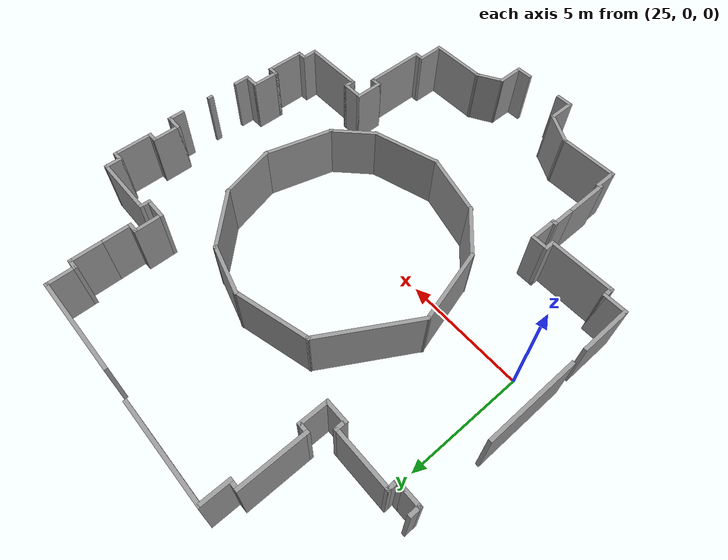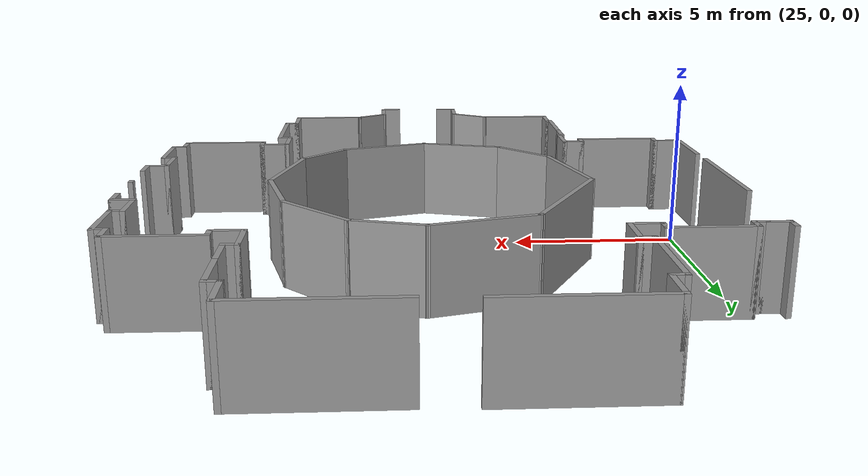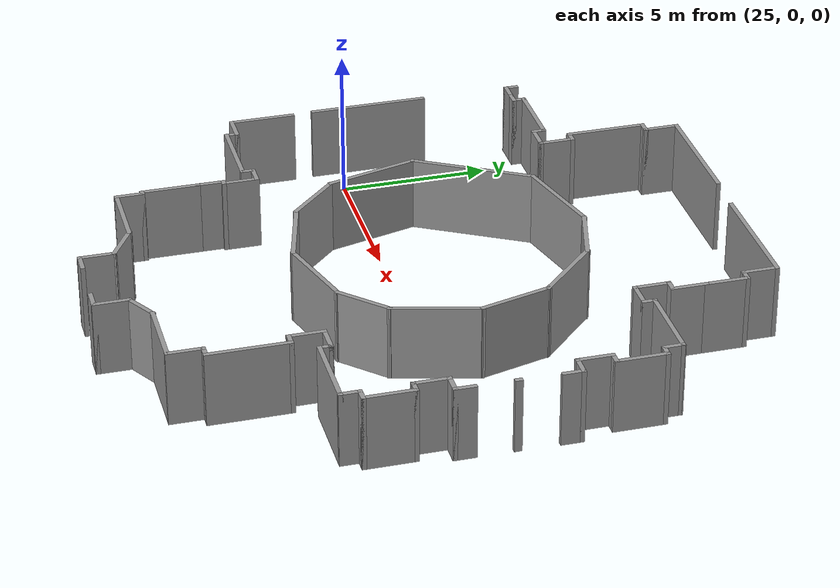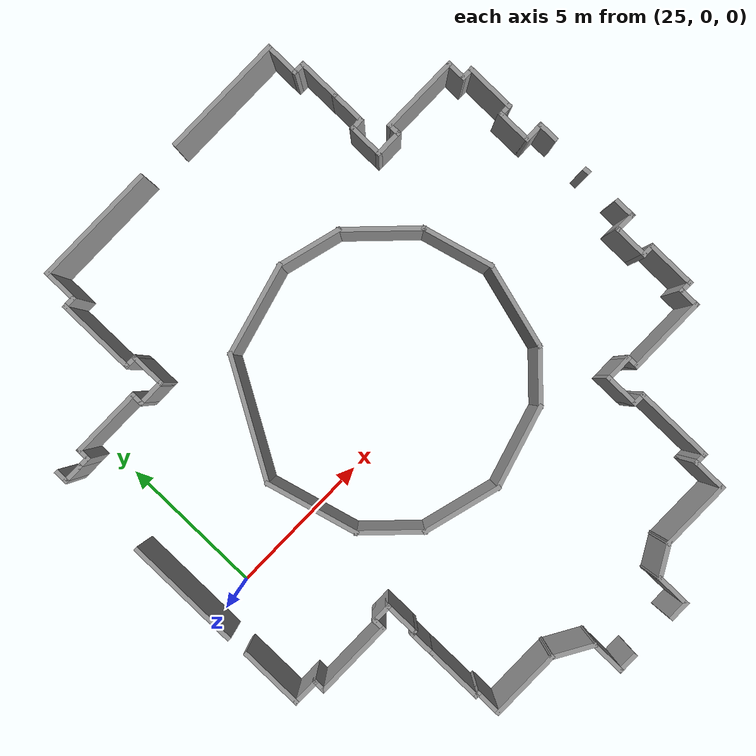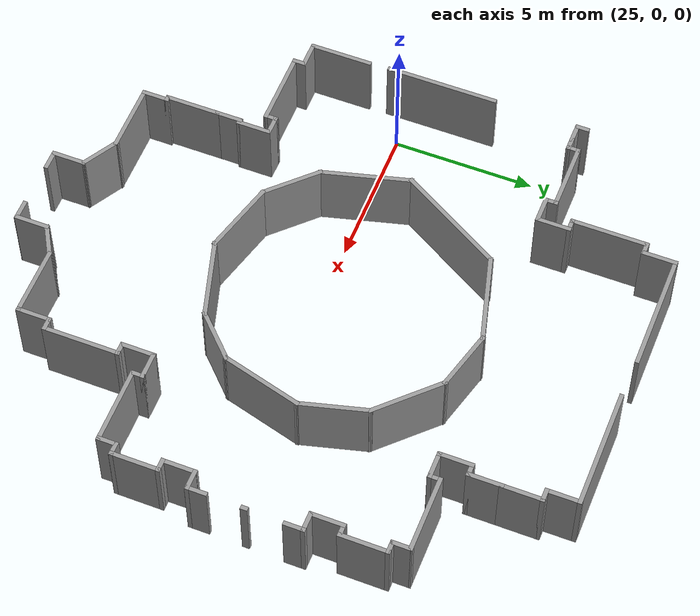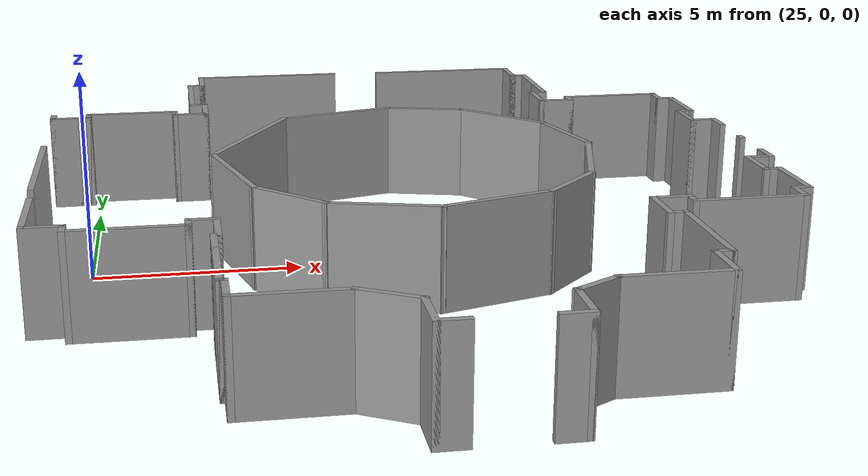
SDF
<sdf version="1.7">
 <model name="TD_n1">
  <pose>-7.14234 -2.45461 0 0 -0 0</pose>
  <link name="Wall_300">
   <collision name="Wall_300_Collision">
    <geometry><box><size>0.5 0.15 2.5</size></box></geometry>
    <pose>0 0 1.25 0 -0 0</pose>
   </collision>
   <visual name="Wall_300_Visual">
    <pose>0 0 1.25 0 -0 0</pose>
    <geometry><box><size>0.5 0.15 2.5</size></box></geometry>
    <material>
     <script><uri>file://media/materials/scripts/gazebo.material</uri><name>Gazebo/Grey</name></script>
     <ambient>1 1 1 1</ambient>
    </material>
    <meta><layer>0</layer></meta>
   </visual>
   <pose>30.9513 8.74308 0 0 -0 -1.5708</pose>
  </link>
  <link name="Wall_301">
   <collision name="Wall_301_Collision">
    <geometry><box><size>0.75 0.15 2.5</size></box></geometry>
    <pose>0 0 1.25 0 -0 0</pose>
   </collision>
   <visual name="Wall_301_Visual">
    <pose>0 0 1.25 0 -0 0</pose>
    <geometry><box><size>0.75 0.15 2.5</size></box></geometry>
    <material>
     <script><uri>file://media/materials/scripts/gazebo.material</uri><name>Gazebo/Grey</name></script>
     <ambient>1 1 1 1</ambient>
    </material>
    <meta><layer>0</layer></meta>
   </visual>
   <pose>31.2513 8.56808 0 0 -0 0</pose>
  </link>
  <link name="Wall_302">
   <collision name="Wall_302_Collision">
    <geometry><box><size>0.5 0.15 2.5</size></box></geometry>
    <pose>0 0 1.25 0 -0 0</pose>
   </collision>
   <visual name="Wall_302_Visual">
    <pose>0 0 1.25 0 -0 0</pose>
    <geometry><box><size>0.5 0.15 2.5</size></box></geometry>
    <material>
     <script><uri>file://media/materials/scripts/gazebo.material</uri><name>Gazebo/Grey</name></script>
     <ambient>1 1 1 1</ambient>
    </material>
    <meta><layer>0</layer></meta>
   </visual>
   <pose>31.7263 8.56808 0 0 -0 0</pose>
  </link>
  <link name="Wall_303">
   <collision name="Wall_303_Collision">
    <geometry><box><size>0.5 0.15 2.5</size></box></geometry>
    <pose>0 0 1.25 0 -0 0</pose>
   </collision>
   <visual name="Wall_303_Visual">
    <pose>0 0 1.25 0 -0 0</pose>
    <geometry><box><size>0.5 0.15 2.5</size></box></geometry>
    <material>
     <script><uri>file://media/materials/scripts/gazebo.material</uri><name>Gazebo/Grey</name></script>
     <ambient>1 1 1 1</ambient>
    </material>
    <meta><layer>0</layer></meta>
   </visual>
   <pose>31.9013 8.74308 0 0 -0 1.5708</pose>
  </link>
  <link name="Wall_304">
   <collision name="Wall_304_Collision">
    <geometry><box><size>2.5 0.15 2.5</size></box></geometry>
    <pose>0 0 1.25 0 -0 0</pose>
   </collision>
   <visual name="Wall_304_Visual">
    <pose>0 0 1.25 0 -0 0</pose>
    <geometry><box><size>2.5 0.15 2.5</size></box></geometry>
    <material>
     <script><uri>file://media/materials/scripts/gazebo.material</uri><name>Gazebo/Grey</name></script>
     <ambient>1 1 1 1</ambient>
    </material>
    <meta><layer>0</layer></meta>
   </visual>
   <pose>33.0763 8.91808 0 0 -0 0</pose>
  </link>
  <link name="Wall_305">
   <collision name="Wall_305_Collision">
    <geometry><box><size>0.5 0.15 2.5</size></box></geometry>
    <pose>0 0 1.25 0 -0 0</pose>
   </collision>
   <visual name="Wall_305_Visual">
    <pose>0 0 1.25 0 -0 0</pose>
    <geometry><box><size>0.5 0.15 2.5</size></box></geometry>
    <material>
     <script><uri>file://media/materials/scripts/gazebo.material</uri><name>Gazebo/Grey</name></script>
     <ambient>1 1 1 1</ambient>
    </material>
    <meta><layer>0</layer></meta>
   </visual>
   <pose>34.2513 8.74308 0 0 -0 -1.5708</pose>
  </link>
  <link name="Wall_306">
   <collision name="Wall_306_Collision">
    <geometry><box><size>1 0.15 2.5</size></box></geometry>
    <pose>0 0 1.25 0 -0 0</pose>
   </collision>
   <visual name="Wall_306_Visual">
    <pose>0 0 1.25 0 -0 0</pose>
    <geometry><box><size>1 0.15 2.5</size></box></geometry>
    <material>
     <script><uri>file://media/materials/scripts/gazebo.material</uri><name>Gazebo/Grey</name></script>
     <ambient>1 1 1 1</ambient>
    </material>
    <meta><layer>0</layer></meta>
   </visual>
   <pose>34.6763 8.56808 0 0 -0 0</pose>
  </link>
  <link name="Wall_307">
   <collision name="Wall_307_Collision">
    <geometry><box><size>1.25 0.15 2.5</size></box></geometry>
    <pose>0 0 1.25 0 -0 0</pose>
   </collision>
   <visual name="Wall_307_Visual">
    <pose>0 0 1.25 0 -0 0</pose>
    <geometry><box><size>1.25 0.15 2.5</size></box></geometry>
    <material>
     <script><uri>file://media/materials/scripts/gazebo.material</uri><name>Gazebo/Grey</name></script>
     <ambient>1 1 1 1</ambient>
    </material>
    <meta><layer>0</layer></meta>
   </visual>
   <pose>35.1013 9.11808 0 0 -0 1.5708</pose>
  </link>
  <link name="Wall_308">
   <collision name="Wall_308_Collision">
    <geometry><box><size>0.5 0.15 2.5</size></box></geometry>
    <pose>0 0 1.25 0 -0 0</pose>
   </collision>
   <visual name="Wall_308_Visual">
    <pose>0 0 1.25 0 -0 0</pose>
    <geometry><box><size>0.5 0.15 2.5</size></box></geometry>
    <material>
     <script><uri>file://media/materials/scripts/gazebo.material</uri><name>Gazebo/Grey</name></script>
     <ambient>1 1 1 1</ambient>
    </material>
    <meta><layer>0</layer></meta>
   </visual>
   <pose>34.9263 9.66808 0 0 -0 3.14159</pose>
  </link>
  <link name="Wall_309">
   <collision name="Wall_309_Collision">
    <geometry><box><size>2.75 0.15 2.5</size></box></geometry>
    <pose>0 0 1.25 0 -0 0</pose>
   </collision>
   <visual name="Wall_309_Visual">
    <pose>0 0 1.25 0 -0 0</pose>
    <geometry><box><size>2.75 0.15 2.5</size></box></geometry>
    <material>
     <script><uri>file://media/materials/scripts/gazebo.material</uri><name>Gazebo/Grey</name></script>
     <ambient>1 1 1 1</ambient>
    </material>
    <meta><layer>0</layer></meta>
   </visual>
   <pose>34.7513 10.9681 0 0 -0 1.5708</pose>
  </link>
  <link name="Wall_310">
   <collision name="Wall_310_Collision">
    <geometry><box><size>0.5 0.15 2.5</size></box></geometry>
    <pose>0 0 1.25 0 -0 0</pose>
   </collision>
   <visual name="Wall_310_Visual">
    <pose>0 0 1.25 0 -0 0</pose>
    <geometry><box><size>0.5 0.15 2.5</size></box></geometry>
    <material>
     <script><uri>file://media/materials/scripts/gazebo.material</uri><name>Gazebo/Grey</name></script>
     <ambient>1 1 1 1</ambient>
    </material>
    <meta><layer>0</layer></meta>
   </visual>
   <pose>34.9263 12.2681 0 0 -0 0</pose>
  </link>
  <link name="Wall_311">
   <collision name="Wall_311_Collision">
    <geometry><box><size>1.25 0.15 2.5</size></box></geometry>
    <pose>0 0 1.25 0 -0 0</pose>
   </collision>
   <visual name="Wall_311_Visual">
    <pose>0 0 1.25 0 -0 0</pose>
    <geometry><box><size>1.25 0.15 2.5</size></box></geometry>
    <material>
     <script><uri>file://media/materials/scripts/gazebo.material</uri><name>Gazebo/Grey</name></script>
     <ambient>1 1 1 1</ambient>
    </material>
    <meta><layer>0</layer></meta>
   </visual>
   <pose>35.1013 12.8181 0 0 -0 1.5708</pose>
  </link>
  <link name="Wall_312">
   <collision name="Wall_312_Collision">
    <geometry><box><size>4.25 0.15 2.5</size></box></geometry>
    <pose>0 0 1.25 0 -0 0</pose>
   </collision>
   <visual name="Wall_312_Visual">
    <pose>0 0 1.25 0 -0 0</pose>
    <geometry><box><size>4.25 0.15 2.5</size></box></geometry>
    <material>
     <script><uri>file://media/materials/scripts/gazebo.material</uri><name>Gazebo/Grey</name></script>
     <ambient>1 1 1 1</ambient>
    </material>
    <meta><layer>0</layer></meta>
   </visual>
   <pose>37.1513 13.3681 0 0 -0 0</pose>
  </link>
  <link name="Wall_314">
   <collision name="Wall_314_Collision">
    <geometry><box><size>4 0.15 2.5</size></box></geometry>
    <pose>0 0 1.25 0 -0 0</pose>
   </collision>
   <visual name="Wall_314_Visual">
    <pose>0 0 1.25 0 -0 0</pose>
    <geometry><box><size>4 0.15 2.5</size></box></geometry>
    <material>
     <script><uri>file://media/materials/scripts/gazebo.material</uri><name>Gazebo/Grey</name></script>
     <ambient>1 1 1 1</ambient>
    </material>
    <meta><layer>0</layer></meta>
   </visual>
   <pose>30.9378 3.62458 0 0 -0 -1.5708</pose>
  </link>
  <link name="Wall_316">
   <collision name="Wall_316_Collision">
    <geometry><box><size>2.25 0.15 2.5</size></box></geometry>
    <pose>0 0 1.25 0 -0 0</pose>
   </collision>
   <visual name="Wall_316_Visual">
    <pose>0 0 1.25 0 -0 0</pose>
    <geometry><box><size>2.25 0.15 2.5</size></box></geometry>
    <material>
     <script><uri>file://media/materials/scripts/gazebo.material</uri><name>Gazebo/Grey</name></script>
     <ambient>1 1 1 1</ambient>
    </material>
    <meta><layer>0</layer></meta>
   </visual>
   <pose>30.9767 -0.110689 0 0 -0 -1.5708</pose>
  </link>
  <link name="Wall_317">
   <collision name="Wall_317_Collision">
    <geometry><box><size>1 0.15 2.5</size></box></geometry>
    <pose>0 0 1.25 0 -0 0</pose>
   </collision>
   <visual name="Wall_317_Visual">
    <pose>0 0 1.25 0 -0 0</pose>
    <geometry><box><size>1 0.15 2.5</size></box></geometry>
    <material>
     <script><uri>file://media/materials/scripts/gazebo.material</uri><name>Gazebo/Grey</name></script>
     <ambient>1 1 1 1</ambient>
    </material>
    <meta><layer>0</layer></meta>
   </visual>
   <pose>31.4017 -1.16069 0 0 -0 0</pose>
  </link>
  <link name="Wall_318">
   <collision name="Wall_318_Collision">
    <geometry><box><size>0.5 0.15 2.5</size></box></geometry>
    <pose>0 0 1.25 0 -0 0</pose>
   </collision>
   <visual name="Wall_318_Visual">
    <pose>0 0 1.25 0 -0 0</pose>
    <geometry><box><size>0.5 0.15 2.5</size></box></geometry>
    <material>
     <script><uri>file://media/materials/scripts/gazebo.material</uri><name>Gazebo/Grey</name></script>
     <ambient>1 1 1 1</ambient>
    </material>
    <meta><layer>0</layer></meta>
   </visual>
   <pose>31.8267 -1.33569 0 0 -0 -1.5708</pose>
  </link>
  <link name="Wall_319">
   <collision name="Wall_319_Collision">
    <geometry><box><size>2.75 0.15 2.5</size></box></geometry>
    <pose>0 0 1.25 0 -0 0</pose>
   </collision>
   <visual name="Wall_319_Visual">
    <pose>0 0 1.25 0 -0 0</pose>
    <geometry><box><size>2.75 0.15 2.5</size></box></geometry>
    <material>
     <script><uri>file://media/materials/scripts/gazebo.material</uri><name>Gazebo/Grey</name></script>
     <ambient>1 1 1 1</ambient>
    </material>
    <meta><layer>0</layer></meta>
   </visual>
   <pose>33.1267 -1.51069 0 0 -0 0</pose>
  </link>
  <link name="Wall_320">
   <collision name="Wall_320_Collision">
    <geometry><box><size>0.5 0.15 2.5</size></box></geometry>
    <pose>0 0 1.25 0 -0 0</pose>
   </collision>
   <visual name="Wall_320_Visual">
    <pose>0 0 1.25 0 -0 0</pose>
    <geometry><box><size>0.5 0.15 2.5</size></box></geometry>
    <material>
     <script><uri>file://media/materials/scripts/gazebo.material</uri><name>Gazebo/Grey</name></script>
     <ambient>1 1 1 1</ambient>
    </material>
    <meta><layer>0</layer></meta>
   </visual>
   <pose>34.4267 -1.33569 0 0 -0 1.5708</pose>
  </link>
  <link name="Wall_321">
   <collision name="Wall_321_Collision">
    <geometry><box><size>0.75 0.15 2.5</size></box></geometry>
    <pose>0 0 1.25 0 -0 0</pose>
   </collision>
   <visual name="Wall_321_Visual">
    <pose>0 0 1.25 0 -0 0</pose>
    <geometry><box><size>0.75 0.15 2.5</size></box></geometry>
    <material>
     <script><uri>file://media/materials/scripts/gazebo.material</uri><name>Gazebo/Grey</name></script>
     <ambient>1 1 1 1</ambient>
    </material>
    <meta><layer>0</layer></meta>
   </visual>
   <pose>34.7267 -1.16069 0 0 -0 0</pose>
  </link>
  <link name="Wall_322">
   <collision name="Wall_322_Collision">
    <geometry><box><size>1.25 0.15 2.5</size></box></geometry>
    <pose>0 0 1.25 0 -0 0</pose>
   </collision>
   <visual name="Wall_322_Visual">
    <pose>0 0 1.25 0 -0 0</pose>
    <geometry><box><size>1.25 0.15 2.5</size></box></geometry>
    <material>
     <script><uri>file://media/materials/scripts/gazebo.material</uri><name>Gazebo/Grey</name></script>
     <ambient>1 1 1 1</ambient>
    </material>
    <meta><layer>0</layer></meta>
   </visual>
   <pose>35.0267 -1.71069 0 0 -0 -1.5708</pose>
  </link>
  <link name="Wall_323">
   <collision name="Wall_323_Collision">
    <geometry><box><size>0.25 0.15 2.5</size></box></geometry>
    <pose>0 0 1.25 0 -0 0</pose>
   </collision>
   <visual name="Wall_323_Visual">
    <pose>0 0 1.25 0 -0 0</pose>
    <geometry><box><size>0.25 0.15 2.5</size></box></geometry>
    <material>
     <script><uri>file://media/materials/scripts/gazebo.material</uri><name>Gazebo/Grey</name></script>
     <ambient>1 1 1 1</ambient>
    </material>
    <meta><layer>0</layer></meta>
   </visual>
   <pose>34.9767 -2.26069 0 0 -0 3.14159</pose>
  </link>
  <link name="Wall_324">
   <collision name="Wall_324_Collision">
    <geometry><box><size>1 0.15 2.5</size></box></geometry>
    <pose>0 0 1.25 0 -0 0</pose>
   </collision>
   <visual name="Wall_324_Visual">
    <pose>0 0 1.25 0 -0 0</pose>
    <geometry><box><size>1 0.15 2.5</size></box></geometry>
    <material>
     <script><uri>file://media/materials/scripts/gazebo.material</uri><name>Gazebo/Grey</name></script>
     <ambient>1 1 1 1</ambient>
    </material>
    <meta><layer>0</layer></meta>
   </visual>
   <pose>34.9267 -2.68569 0 0 -0 -1.5708</pose>
  </link>
  <link name="Wall_326">
   <collision name="Wall_326_Collision">
    <geometry><box><size>2.75 0.15 2.5</size></box></geometry>
    <pose>0 0 1.25 0 -0 0</pose>
   </collision>
   <visual name="Wall_326_Visual">
    <pose>0 0 1.25 0 -0 0</pose>
    <geometry><box><size>2.75 0.15 2.5</size></box></geometry>
    <material>
     <script><uri>file://media/materials/scripts/gazebo.material</uri><name>Gazebo/Grey</name></script>
     <ambient>1 1 1 1</ambient>
    </material>
    <meta><layer>0</layer></meta>
   </visual>
   <pose>38.6992 -0.712589 0 0 -0 2.87979</pose>
  </link>
  <link name="Wall_327">
   <collision name="Wall_327_Collision">
    <geometry><box><size>2.25 0.15 2.5</size></box></geometry>
    <pose>0 0 1.25 0 -0 0</pose>
   </collision>
   <visual name="Wall_327_Visual">
    <pose>0 0 1.25 0 -0 0</pose>
    <geometry><box><size>2.25 0.15 2.5</size></box></geometry>
    <material>
     <script><uri>file://media/materials/scripts/gazebo.material</uri><name>Gazebo/Grey</name></script>
     <ambient>1 1 1 1</ambient>
    </material>
    <meta><layer>0</layer></meta>
   </visual>
   <pose>36.7011 0.366338 0 0 -0 2.35619</pose>
  </link>
  <link name="Wall_328">
   <collision name="Wall_328_Collision">
    <geometry><box><size>3.25 0.15 2.5</size></box></geometry>
    <pose>0 0 1.25 0 -0 0</pose>
   </collision>
   <visual name="Wall_328_Visual">
    <pose>0 0 1.25 0 -0 0</pose>
    <geometry><box><size>3.25 0.15 2.5</size></box></geometry>
    <material>
     <script><uri>file://media/materials/scripts/gazebo.material</uri><name>Gazebo/Grey</name></script>
     <ambient>1 1 1 1</ambient>
    </material>
    <meta><layer>0</layer></meta>
   </visual>
   <pose>35.5574 2.60598 0 0 -0 1.8326</pose>
  </link>
  <link name="Wall_329">
   <collision name="Wall_329_Collision">
    <geometry><box><size>4.25 0.15 2.5</size></box></geometry>
    <pose>0 0 1.25 0 -0 0</pose>
   </collision>
   <visual name="Wall_329_Visual">
    <pose>0 0 1.25 0 -0 0</pose>
    <geometry><box><size>4.25 0.15 2.5</size></box></geometry>
    <material>
     <script><uri>file://media/materials/scripts/gazebo.material</uri><name>Gazebo/Grey</name></script>
     <ambient>1 1 1 1</ambient>
    </material>
    <meta><layer>0</layer></meta>
   </visual>
   <pose>36.1813 5.87852 0 0 -0 1.0472</pose>
  </link>
  <link name="Wall_330">
   <collision name="Wall_330_Collision">
    <geometry><box><size>3.25 0.15 2.5</size></box></geometry>
    <pose>0 0 1.25 0 -0 0</pose>
   </collision>
   <visual name="Wall_330_Visual">
    <pose>0 0 1.25 0 -0 0</pose>
    <geometry><box><size>3.25 0.15 2.5</size></box></geometry>
    <material>
     <script><uri>file://media/materials/scripts/gazebo.material</uri><name>Gazebo/Grey</name></script>
     <ambient>1 1 1 1</ambient>
    </material>
    <meta><layer>0</layer></meta>
   </visual>
   <pose>38.7035 8.05504 0 0 -0 0.261799</pose>
  </link>
  <link name="Wall_331">
   <collision name="Wall_331_Collision">
    <geometry><box><size>2.25 0.15 2.5</size></box></geometry>
    <pose>0 0 1.25 0 -0 0</pose>
   </collision>
   <visual name="Wall_331_Visual">
    <pose>0 0 1.25 0 -0 0</pose>
    <geometry><box><size>2.25 0.15 2.5</size></box></geometry>
    <material>
     <script><uri>file://media/materials/scripts/gazebo.material</uri><name>Gazebo/Grey</name></script>
     <ambient>1 1 1 1</ambient>
    </material>
    <meta><layer>0</layer></meta>
   </visual>
   <pose>41.2149 8.18445 0 0 -0 -0.261799</pose>
  </link>
  <link name="Wall_332">
   <collision name="Wall_332_Collision">
    <geometry><box><size>2.75 0.15 2.5</size></box></geometry>
    <pose>0 0 1.25 0 -0 0</pose>
   </collision>
   <visual name="Wall_332_Visual">
    <pose>0 0 1.25 0 -0 0</pose>
    <geometry><box><size>2.75 0.15 2.5</size></box></geometry>
    <material>
     <script><uri>file://media/materials/scripts/gazebo.material</uri><name>Gazebo/Grey</name></script>
     <ambient>1 1 1 1</ambient>
    </material>
    <meta><layer>0</layer></meta>
   </visual>
   <pose>43.1483 6.99345 0 0 -0 -0.785398</pose>
  </link>
  <link name="Wall_333">
   <collision name="Wall_333_Collision">
    <geometry><box><size>2.5 0.15 2.5</size></box></geometry>
    <pose>0 0 1.25 0 -0 0</pose>
   </collision>
   <visual name="Wall_333_Visual">
    <pose>0 0 1.25 0 -0 0</pose>
    <geometry><box><size>2.5 0.15 2.5</size></box></geometry>
    <material>
     <script><uri>file://media/materials/scripts/gazebo.material</uri><name>Gazebo/Grey</name></script>
     <ambient>1 1 1 1</ambient>
    </material>
    <meta><layer>0</layer></meta>
   </visual>
   <pose>44.3717 4.93925 0 0 -0 -1.309</pose>
  </link>
  <link name="Wall_334">
   <collision name="Wall_334_Collision">
    <geometry><box><size>3 0.15 2.5</size></box></geometry>
    <pose>0 0 1.25 0 -0 0</pose>
   </collision>
   <visual name="Wall_334_Visual">
    <pose>0 0 1.25 0 -0 0</pose>
    <geometry><box><size>3 0.15 2.5</size></box></geometry>
    <material>
     <script><uri>file://media/materials/scripts/gazebo.material</uri><name>Gazebo/Grey</name></script>
     <ambient>1 1 1 1</ambient>
    </material>
    <meta><layer>0</layer></meta>
   </visual>
   <pose>44.307 2.42785 0 0 -0 -1.8326</pose>
  </link>
  <link name="Wall_335">
   <collision name="Wall_335_Collision">
    <geometry><box><size>2 0.15 2.5</size></box></geometry>
    <pose>0 0 1.25 0 -0 0</pose>
   </collision>
   <visual name="Wall_335_Visual">
    <pose>0 0 1.25 0 -0 0</pose>
    <geometry><box><size>2 0.15 2.5</size></box></geometry>
    <material>
     <script><uri>file://media/materials/scripts/gazebo.material</uri><name>Gazebo/Grey</name></script>
     <ambient>1 1 1 1</ambient>
    </material>
    <meta><layer>0</layer></meta>
   </visual>
   <pose>43.2841 0.397327 0 0 -0 -2.35619</pose>
  </link>
  <link name="Wall_336">
   <collision name="Wall_336_Collision">
    <geometry><box><size>2.93993 0.15 2.5</size></box></geometry>
    <pose>0 0 1.25 0 -0 0</pose>
   </collision>
   <visual name="Wall_336_Visual">
    <pose>0 0 1.25 0 -0 0</pose>
    <geometry><box><size>2.93993 0.15 2.5</size></box></geometry>
    <material>
     <script><uri>file://media/materials/scripts/gazebo.material</uri><name>Gazebo/Grey</name></script>
     <ambient>1 1 1 1</ambient>
    </material>
    <meta><layer>0</layer></meta>
   </visual>
   <pose>41.2925 -0.6529 0 0 -0 -2.85364</pose>
  </link>
  <link name="Wall_338">
   <collision name="Wall_338_Collision">
    <geometry><box><size>2 0.15 2.5</size></box></geometry>
    <pose>0 0 1.25 0 -0 0</pose>
   </collision>
   <visual name="Wall_338_Visual">
    <pose>0 0 1.25 0 -0 0</pose>
    <geometry><box><size>2 0.15 2.5</size></box></geometry>
    <material>
     <script><uri>file://media/materials/scripts/gazebo.material</uri><name>Gazebo/Grey</name></script>
     <ambient>1 1 1 1</ambient>
    </material>
    <meta><layer>0</layer></meta>
   </visual>
   <pose>34.9267 -4.03569 0 0 -0 -1.5708</pose>
  </link>
  <link name="Wall_339">
   <collision name="Wall_339_Collision">
    <geometry><box><size>0.25 0.15 2.5</size></box></geometry>
    <pose>0 0 1.25 0 -0 0</pose>
   </collision>
   <visual name="Wall_339_Visual">
    <pose>0 0 1.25 0 -0 0</pose>
    <geometry><box><size>0.25 0.15 2.5</size></box></geometry>
    <material>
     <script><uri>file://media/materials/scripts/gazebo.material</uri><name>Gazebo/Grey</name></script>
     <ambient>1 1 1 1</ambient>
    </material>
    <meta><layer>0</layer></meta>
   </visual>
   <pose>34.9767 -4.96069 0 0 -0 0</pose>
  </link>
  <link name="Wall_340">
   <collision name="Wall_340_Collision">
    <geometry><box><size>1 0.15 2.5</size></box></geometry>
    <pose>0 0 1.25 0 -0 0</pose>
   </collision>
   <visual name="Wall_340_Visual">
    <pose>0 0 1.25 0 -0 0</pose>
    <geometry><box><size>1 0.15 2.5</size></box></geometry>
    <material>
     <script><uri>file://media/materials/scripts/gazebo.material</uri><name>Gazebo/Grey</name></script>
     <ambient>1 1 1 1</ambient>
    </material>
    <meta><layer>0</layer></meta>
   </visual>
   <pose>35.0267 -5.38569 0 0 -0 -1.5708</pose>
  </link>
  <link name="Wall_341">
   <collision name="Wall_341_Collision">
    <geometry><box><size>2.5 0.15 2.5</size></box></geometry>
    <pose>0 0 1.25 0 -0 0</pose>
   </collision>
   <visual name="Wall_341_Visual">
    <pose>0 0 1.25 0 -0 0</pose>
    <geometry><box><size>2.5 0.15 2.5</size></box></geometry>
    <material>
     <script><uri>file://media/materials/scripts/gazebo.material</uri><name>Gazebo/Grey</name></script>
     <ambient>1 1 1 1</ambient>
    </material>
    <meta><layer>0</layer></meta>
   </visual>
   <pose>36.2017 -5.81069 0 0 -0 0</pose>
  </link>
  <link name="Wall_342">
   <collision name="Wall_342_Collision">
    <geometry><box><size>1.5 0.15 2.5</size></box></geometry>
    <pose>0 0 1.25 0 -0 0</pose>
   </collision>
   <visual name="Wall_342_Visual">
    <pose>0 0 1.25 0 -0 0</pose>
    <geometry><box><size>1.5 0.15 2.5</size></box></geometry>
    <material>
     <script><uri>file://media/materials/scripts/gazebo.material</uri><name>Gazebo/Grey</name></script>
     <ambient>1 1 1 1</ambient>
    </material>
    <meta><layer>0</layer></meta>
   </visual>
   <pose>37.9613 -6.14819 0 0 -0 -0.523599</pose>
  </link>
  <link name="Wall_343">
   <collision name="Wall_343_Collision">
    <geometry><box><size>1.25 0.15 2.5</size></box></geometry>
    <pose>0 0 1.25 0 -0 0</pose>
   </collision>
   <visual name="Wall_343_Visual">
    <pose>0 0 1.25 0 -0 0</pose>
    <geometry><box><size>1.25 0.15 2.5</size></box></geometry>
    <material>
     <script><uri>file://media/materials/scripts/gazebo.material</uri><name>Gazebo/Grey</name></script>
     <ambient>1 1 1 1</ambient>
    </material>
    <meta><layer>0</layer></meta>
   </visual>
   <pose>38.5458 -7.03569 0 0 -0 -1.5708</pose>
  </link>
  <link name="Wall_344">
   <collision name="Wall_344_Collision">
    <geometry><box><size>0.75 0.15 2.5</size></box></geometry>
    <pose>0 0 1.25 0 -0 0</pose>
   </collision>
   <visual name="Wall_344_Visual">
    <pose>0 0 1.25 0 -0 0</pose>
    <geometry><box><size>0.75 0.15 2.5</size></box></geometry>
    <material>
     <script><uri>file://media/materials/scripts/gazebo.material</uri><name>Gazebo/Grey</name></script>
     <ambient>1 1 1 1</ambient>
    </material>
    <meta><layer>0</layer></meta>
   </visual>
   <pose>38.8458 -7.58569 0 0 -0 0</pose>
  </link>
  <link name="Wall_346">
   <collision name="Wall_346_Collision">
    <geometry><box><size>0.75 0.15 2.5</size></box></geometry>
    <pose>0 0 1.25 0 -0 0</pose>
   </collision>
   <visual name="Wall_346_Visual">
    <pose>0 0 1.25 0 -0 0</pose>
    <geometry><box><size>0.75 0.15 2.5</size></box></geometry>
    <material>
     <script><uri>file://media/materials/scripts/gazebo.material</uri><name>Gazebo/Grey</name></script>
     <ambient>1 1 1 1</ambient>
    </material>
    <meta><layer>0</layer></meta>
   </visual>
   <pose>41.0962 -7.61066 0 0 -0 0</pose>
  </link>
  <link name="Wall_347">
   <collision name="Wall_347_Collision">
    <geometry><box><size>1.25 0.15 2.5</size></box></geometry>
    <pose>0 0 1.25 0 -0 0</pose>
   </collision>
   <visual name="Wall_347_Visual">
    <pose>0 0 1.25 0 -0 0</pose>
    <geometry><box><size>1.25 0.15 2.5</size></box></geometry>
    <material>
     <script><uri>file://media/materials/scripts/gazebo.material</uri><name>Gazebo/Grey</name></script>
     <ambient>1 1 1 1</ambient>
    </material>
    <meta><layer>0</layer></meta>
   </visual>
   <pose>41.3962 -7.06066 0 0 -0 1.5708</pose>
  </link>
  <link name="Wall_348">
   <collision name="Wall_348_Collision">
    <geometry><box><size>1.25 0.15 2.5</size></box></geometry>
    <pose>0 0 1.25 0 -0 0</pose>
   </collision>
   <visual name="Wall_348_Visual">
    <pose>0 0 1.25 0 -0 0</pose>
    <geometry><box><size>1.25 0.15 2.5</size></box></geometry>
    <material>
     <script><uri>file://media/materials/scripts/gazebo.material</uri><name>Gazebo/Grey</name></script>
     <ambient>1 1 1 1</ambient>
    </material>
    <meta><layer>0</layer></meta>
   </visual>
   <pose>41.8725 -6.23566 0 0 -0 0.523599</pose>
  </link>
  <link name="Wall_349">
   <collision name="Wall_349_Collision">
    <geometry><box><size>2.5 0.15 2.5</size></box></geometry>
    <pose>0 0 1.25 0 -0 0</pose>
   </collision>
   <visual name="Wall_349_Visual">
    <pose>0 0 1.25 0 -0 0</pose>
    <geometry><box><size>2.5 0.15 2.5</size></box></geometry>
    <material>
     <script><uri>file://media/materials/scripts/gazebo.material</uri><name>Gazebo/Grey</name></script>
     <ambient>1 1 1 1</ambient>
    </material>
    <meta><layer>0</layer></meta>
   </visual>
   <pose>43.5238 -5.96066 0 0 -0 0</pose>
  </link>
  <link name="Wall_350">
   <collision name="Wall_350_Collision">
    <geometry><box><size>1.25 0.15 2.5</size></box></geometry>
    <pose>0 0 1.25 0 -0 0</pose>
   </collision>
   <visual name="Wall_350_Visual">
    <pose>0 0 1.25 0 -0 0</pose>
    <geometry><box><size>1.25 0.15 2.5</size></box></geometry>
    <material>
     <script><uri>file://media/materials/scripts/gazebo.material</uri><name>Gazebo/Grey</name></script>
     <ambient>1 1 1 1</ambient>
    </material>
    <meta><layer>0</layer></meta>
   </visual>
   <pose>44.6988 -5.41066 0 0 -0 1.5708</pose>
  </link>
  <link name="Wall_351">
   <collision name="Wall_351_Collision">
    <geometry><box><size>0.5 0.15 2.5</size></box></geometry>
    <pose>0 0 1.25 0 -0 0</pose>
   </collision>
   <visual name="Wall_351_Visual">
    <pose>0 0 1.25 0 -0 0</pose>
    <geometry><box><size>0.5 0.15 2.5</size></box></geometry>
    <material>
     <script><uri>file://media/materials/scripts/gazebo.material</uri><name>Gazebo/Grey</name></script>
     <ambient>1 1 1 1</ambient>
    </material>
    <meta><layer>0</layer></meta>
   </visual>
   <pose>44.8738 -4.86066 0 0 -0 0</pose>
  </link>
  <link name="Wall_352">
   <collision name="Wall_352_Collision">
    <geometry><box><size>2.75 0.15 2.5</size></box></geometry>
    <pose>0 0 1.25 0 -0 0</pose>
   </collision>
   <visual name="Wall_352_Visual">
    <pose>0 0 1.25 0 -0 0</pose>
    <geometry><box><size>2.75 0.15 2.5</size></box></geometry>
    <material>
     <script><uri>file://media/materials/scripts/gazebo.material</uri><name>Gazebo/Grey</name></script>
     <ambient>1 1 1 1</ambient>
    </material>
    <meta><layer>0</layer></meta>
   </visual>
   <pose>45.0488 -3.56066 0 0 -0 1.5708</pose>
  </link>
  <link name="Wall_353">
   <collision name="Wall_353_Collision">
    <geometry><box><size>0.5 0.15 2.5</size></box></geometry>
    <pose>0 0 1.25 0 -0 0</pose>
   </collision>
   <visual name="Wall_353_Visual">
    <pose>0 0 1.25 0 -0 0</pose>
    <geometry><box><size>0.5 0.15 2.5</size></box></geometry>
    <material>
     <script><uri>file://media/materials/scripts/gazebo.material</uri><name>Gazebo/Grey</name></script>
     <ambient>1 1 1 1</ambient>
    </material>
    <meta><layer>0</layer></meta>
   </visual>
   <pose>44.8738 -2.26066 0 0 -0 3.14159</pose>
  </link>
  <link name="Wall_354">
   <collision name="Wall_354_Collision">
    <geometry><box><size>1.25 0.15 2.5</size></box></geometry>
    <pose>0 0 1.25 0 -0 0</pose>
   </collision>
   <visual name="Wall_354_Visual">
    <pose>0 0 1.25 0 -0 0</pose>
    <geometry><box><size>1.25 0.15 2.5</size></box></geometry>
    <material>
     <script><uri>file://media/materials/scripts/gazebo.material</uri><name>Gazebo/Grey</name></script>
     <ambient>1 1 1 1</ambient>
    </material>
    <meta><layer>0</layer></meta>
   </visual>
   <pose>44.6988 -1.71066 0 0 -0 1.5708</pose>
  </link>
  <link name="Wall_355">
   <collision name="Wall_355_Collision">
    <geometry><box><size>1 0.15 2.5</size></box></geometry>
    <pose>0 0 1.25 0 -0 0</pose>
   </collision>
   <visual name="Wall_355_Visual">
    <pose>0 0 1.25 0 -0 0</pose>
    <geometry><box><size>1 0.15 2.5</size></box></geometry>
    <material>
     <script><uri>file://media/materials/scripts/gazebo.material</uri><name>Gazebo/Grey</name></script>
     <ambient>1 1 1 1</ambient>
    </material>
    <meta><layer>0</layer></meta>
   </visual>
   <pose>45.1238 -1.16066 0 0 -0 0</pose>
  </link>
  <link name="Wall_356">
   <collision name="Wall_356_Collision">
    <geometry><box><size>0.5 0.15 2.5</size></box></geometry>
    <pose>0 0 1.25 0 -0 0</pose>
   </collision>
   <visual name="Wall_356_Visual">
    <pose>0 0 1.25 0 -0 0</pose>
    <geometry><box><size>0.5 0.15 2.5</size></box></geometry>
    <material>
     <script><uri>file://media/materials/scripts/gazebo.material</uri><name>Gazebo/Grey</name></script>
     <ambient>1 1 1 1</ambient>
    </material>
    <meta><layer>0</layer></meta>
   </visual>
   <pose>45.5488 -1.33566 0 0 -0 -1.5708</pose>
  </link>
  <link name="Wall_357">
   <collision name="Wall_357_Collision">
    <geometry><box><size>2.75 0.15 2.5</size></box></geometry>
    <pose>0 0 1.25 0 -0 0</pose>
   </collision>
   <visual name="Wall_357_Visual">
    <pose>0 0 1.25 0 -0 0</pose>
    <geometry><box><size>2.75 0.15 2.5</size></box></geometry>
    <material>
     <script><uri>file://media/materials/scripts/gazebo.material</uri><name>Gazebo/Grey</name></script>
     <ambient>1 1 1 1</ambient>
    </material>
    <meta><layer>0</layer></meta>
   </visual>
   <pose>46.8488 -1.51066 0 0 -0 0</pose>
  </link>
  <link name="Wall_358">
   <collision name="Wall_358_Collision">
    <geometry><box><size>0.75 0.15 2.5</size></box></geometry>
    <pose>0 0 1.25 0 -0 0</pose>
   </collision>
   <visual name="Wall_358_Visual">
    <pose>0 0 1.25 0 -0 0</pose>
    <geometry><box><size>0.75 0.15 2.5</size></box></geometry>
    <material>
     <script><uri>file://media/materials/scripts/gazebo.material</uri><name>Gazebo/Grey</name></script>
     <ambient>1 1 1 1</ambient>
    </material>
    <meta><layer>0</layer></meta>
   </visual>
   <pose>48.1488 -1.21066 0 0 -0 1.5708</pose>
  </link>
  <link name="Wall_359">
   <collision name="Wall_359_Collision">
    <geometry><box><size>0.5 0.15 2.5</size></box></geometry>
    <pose>0 0 1.25 0 -0 0</pose>
   </collision>
   <visual name="Wall_359_Visual">
    <pose>0 0 1.25 0 -0 0</pose>
    <geometry><box><size>0.5 0.15 2.5</size></box></geometry>
    <material>
     <script><uri>file://media/materials/scripts/gazebo.material</uri><name>Gazebo/Grey</name></script>
     <ambient>1 1 1 1</ambient>
    </material>
    <meta><layer>0</layer></meta>
   </visual>
   <pose>48.3238 -0.910658 0 0 -0 0</pose>
  </link>
  <link name="Wall_360">
   <collision name="Wall_360_Collision">
    <geometry><box><size>1.75 0.15 2.5</size></box></geometry>
    <pose>0 0 1.25 0 -0 0</pose>
   </collision>
   <visual name="Wall_360_Visual">
    <pose>0 0 1.25 0 -0 0</pose>
    <geometry><box><size>1.75 0.15 2.5</size></box></geometry>
    <material>
     <script><uri>file://media/materials/scripts/gazebo.material</uri><name>Gazebo/Grey</name></script>
     <ambient>1 1 1 1</ambient>
    </material>
    <meta><layer>0</layer></meta>
   </visual>
   <pose>48.4988 -0.110658 0 0 -0 1.5708</pose>
  </link>
  <link name="Wall_361">
   <collision name="Wall_361_Collision">
    <geometry><box><size>0.5 0.15 2.5</size></box></geometry>
    <pose>0 0 1.25 0 -0 0</pose>
   </collision>
   <visual name="Wall_361_Visual">
    <pose>0 0 1.25 0 -0 0</pose>
    <geometry><box><size>0.5 0.15 2.5</size></box></geometry>
    <material>
     <script><uri>file://media/materials/scripts/gazebo.material</uri><name>Gazebo/Grey</name></script>
     <ambient>1 1 1 1</ambient>
    </material>
    <meta><layer>0</layer></meta>
   </visual>
   <pose>48.3238 0.689342 0 0 -0 3.14159</pose>
  </link>
  <link name="Wall_362">
   <collision name="Wall_362_Collision">
    <geometry><box><size>1.25 0.15 2.5</size></box></geometry>
    <pose>0 0 1.25 0 -0 0</pose>
   </collision>
   <visual name="Wall_362_Visual">
    <pose>0 0 1.25 0 -0 0</pose>
    <geometry><box><size>1.25 0.15 2.5</size></box></geometry>
    <material>
     <script><uri>file://media/materials/scripts/gazebo.material</uri><name>Gazebo/Grey</name></script>
     <ambient>1 1 1 1</ambient>
    </material>
    <meta><layer>0</layer></meta>
   </visual>
   <pose>48.1488 1.23934 0 0 -0 1.5708</pose>
  </link>
  <link name="Wall_363">
   <collision name="Wall_363_Collision">
    <geometry><box><size>0.75 0.15 2.5</size></box></geometry>
    <pose>0 0 1.25 0 -0 0</pose>
   </collision>
   <visual name="Wall_363_Visual">
    <pose>0 0 1.25 0 -0 0</pose>
    <geometry><box><size>0.75 0.15 2.5</size></box></geometry>
    <material>
     <script><uri>file://media/materials/scripts/gazebo.material</uri><name>Gazebo/Grey</name></script>
     <ambient>1 1 1 1</ambient>
    </material>
    <meta><layer>0</layer></meta>
   </visual>
   <pose>48.4488 1.78934 0 0 -0 0</pose>
  </link>
  <link name="Wall_364">
   <collision name="Wall_364_Collision">
    <geometry><box><size>0.75 0.15 2.5</size></box></geometry>
    <pose>0 0 1.25 0 -0 0</pose>
   </collision>
   <visual name="Wall_364_Visual">
    <pose>0 0 1.25 0 -0 0</pose>
    <geometry><box><size>0.75 0.15 2.5</size></box></geometry>
    <material>
     <script><uri>file://media/materials/scripts/gazebo.material</uri><name>Gazebo/Grey</name></script>
     <ambient>1 1 1 1</ambient>
    </material>
    <meta><layer>0</layer></meta>
   </visual>
   <pose>48.7488 2.08934 0 0 -0 1.5708</pose>
  </link>
  <link name="Wall_368">
   <collision name="Wall_368_Collision">
    <geometry><box><size>0.25 0.15 2.5</size></box></geometry>
    <pose>0 0 1.25 0 -0 0</pose>
   </collision>
   <visual name="Wall_368_Visual">
    <pose>0 0 1.25 0 -0 0</pose>
    <geometry><box><size>0.25 0.15 2.5</size></box></geometry>
    <material>
     <script><uri>file://media/materials/scripts/gazebo.material</uri><name>Gazebo/Grey</name></script>
     <ambient>1 1 1 1</ambient>
    </material>
    <meta><layer>0</layer></meta>
   </visual>
   <pose>48.7649 3.71891 0 0 -0 -1.5708</pose>
  </link>
  <link name="Wall_370">
   <collision name="Wall_370_Collision">
    <geometry><box><size>0.75 0.15 2.5</size></box></geometry>
    <pose>0 0 1.25 0 -0 0</pose>
   </collision>
   <visual name="Wall_370_Visual">
    <pose>0 0 1.25 0 -0 0</pose>
    <geometry><box><size>0.75 0.15 2.5</size></box></geometry>
    <material>
     <script><uri>file://media/materials/scripts/gazebo.material</uri><name>Gazebo/Grey</name></script>
     <ambient>1 1 1 1</ambient>
    </material>
    <meta><layer>0</layer></meta>
   </visual>
   <pose>48.7955 5.39958 0 0 -0 1.5708</pose>
  </link>
  <link name="Wall_371">
   <collision name="Wall_371_Collision">
    <geometry><box><size>0.75 0.15 2.5</size></box></geometry>
    <pose>0 0 1.25 0 -0 0</pose>
   </collision>
   <visual name="Wall_371_Visual">
    <pose>0 0 1.25 0 -0 0</pose>
    <geometry><box><size>0.75 0.15 2.5</size></box></geometry>
    <material>
     <script><uri>file://media/materials/scripts/gazebo.material</uri><name>Gazebo/Grey</name></script>
     <ambient>1 1 1 1</ambient>
    </material>
    <meta><layer>0</layer></meta>
   </visual>
   <pose>48.4955 5.69958 0 0 -0 3.14159</pose>
  </link>
  <link name="Wall_372">
   <collision name="Wall_372_Collision">
    <geometry><box><size>1.25 0.15 2.5</size></box></geometry>
    <pose>0 0 1.25 0 -0 0</pose>
   </collision>
   <visual name="Wall_372_Visual">
    <pose>0 0 1.25 0 -0 0</pose>
    <geometry><box><size>1.25 0.15 2.5</size></box></geometry>
    <material>
     <script><uri>file://media/materials/scripts/gazebo.material</uri><name>Gazebo/Grey</name></script>
     <ambient>1 1 1 1</ambient>
    </material>
    <meta><layer>0</layer></meta>
   </visual>
   <pose>48.1955 6.24958 0 0 -0 1.5708</pose>
  </link>
  <link name="Wall_373">
   <collision name="Wall_373_Collision">
    <geometry><box><size>0.5 0.15 2.5</size></box></geometry>
    <pose>0 0 1.25 0 -0 0</pose>
   </collision>
   <visual name="Wall_373_Visual">
    <pose>0 0 1.25 0 -0 0</pose>
    <geometry><box><size>0.5 0.15 2.5</size></box></geometry>
    <material>
     <script><uri>file://media/materials/scripts/gazebo.material</uri><name>Gazebo/Grey</name></script>
     <ambient>1 1 1 1</ambient>
    </material>
    <meta><layer>0</layer></meta>
   </visual>
   <pose>48.3705 6.79958 0 0 -0 0</pose>
  </link>
  <link name="Wall_374">
   <collision name="Wall_374_Collision">
    <geometry><box><size>1.75 0.15 2.5</size></box></geometry>
    <pose>0 0 1.25 0 -0 0</pose>
   </collision>
   <visual name="Wall_374_Visual">
    <pose>0 0 1.25 0 -0 0</pose>
    <geometry><box><size>1.75 0.15 2.5</size></box></geometry>
    <material>
     <script><uri>file://media/materials/scripts/gazebo.material</uri><name>Gazebo/Grey</name></script>
     <ambient>1 1 1 1</ambient>
    </material>
    <meta><layer>0</layer></meta>
   </visual>
   <pose>48.5455 7.59958 0 0 -0 1.5708</pose>
  </link>
  <link name="Wall_375">
   <collision name="Wall_375_Collision">
    <geometry><box><size>0.5 0.15 2.5</size></box></geometry>
    <pose>0 0 1.25 0 -0 0</pose>
   </collision>
   <visual name="Wall_375_Visual">
    <pose>0 0 1.25 0 -0 0</pose>
    <geometry><box><size>0.5 0.15 2.5</size></box></geometry>
    <material>
     <script><uri>file://media/materials/scripts/gazebo.material</uri><name>Gazebo/Grey</name></script>
     <ambient>1 1 1 1</ambient>
    </material>
    <meta><layer>0</layer></meta>
   </visual>
   <pose>48.3705 8.39958 0 0 -0 3.14159</pose>
  </link>
  <link name="Wall_376">
   <collision name="Wall_376_Collision">
    <geometry><box><size>0.75 0.15 2.5</size></box></geometry>
    <pose>0 0 1.25 0 -0 0</pose>
   </collision>
   <visual name="Wall_376_Visual">
    <pose>0 0 1.25 0 -0 0</pose>
    <geometry><box><size>0.75 0.15 2.5</size></box></geometry>
    <material>
     <script><uri>file://media/materials/scripts/gazebo.material</uri><name>Gazebo/Grey</name></script>
     <ambient>1 1 1 1</ambient>
    </material>
    <meta><layer>0</layer></meta>
   </visual>
   <pose>48.1955 8.69958 0 0 -0 1.5708</pose>
  </link>
  <link name="Wall_377">
   <collision name="Wall_377_Collision">
    <geometry><box><size>2.75 0.15 2.5</size></box></geometry>
    <pose>0 0 1.25 0 -0 0</pose>
   </collision>
   <visual name="Wall_377_Visual">
    <pose>0 0 1.25 0 -0 0</pose>
    <geometry><box><size>2.75 0.15 2.5</size></box></geometry>
    <material>
     <script><uri>file://media/materials/scripts/gazebo.material</uri><name>Gazebo/Grey</name></script>
     <ambient>1 1 1 1</ambient>
    </material>
    <meta><layer>0</layer></meta>
   </visual>
   <pose>46.8955 8.99958 0 0 -0 3.14159</pose>
  </link>
  <link name="Wall_378">
   <collision name="Wall_378_Collision">
    <geometry><box><size>0.5 0.15 2.5</size></box></geometry>
    <pose>0 0 1.25 0 -0 0</pose>
   </collision>
   <visual name="Wall_378_Visual">
    <pose>0 0 1.25 0 -0 0</pose>
    <geometry><box><size>0.5 0.15 2.5</size></box></geometry>
    <material>
     <script><uri>file://media/materials/scripts/gazebo.material</uri><name>Gazebo/Grey</name></script>
     <ambient>1 1 1 1</ambient>
    </material>
    <meta><layer>0</layer></meta>
   </visual>
   <pose>45.5955 8.82458 0 0 -0 -1.5708</pose>
  </link>
  <link name="Wall_379">
   <collision name="Wall_379_Collision">
    <geometry><box><size>1 0.15 2.5</size></box></geometry>
    <pose>0 0 1.25 0 -0 0</pose>
   </collision>
   <visual name="Wall_379_Visual">
    <pose>0 0 1.25 0 -0 0</pose>
    <geometry><box><size>1 0.15 2.5</size></box></geometry>
    <material>
     <script><uri>file://media/materials/scripts/gazebo.material</uri><name>Gazebo/Grey</name></script>
     <ambient>1 1 1 1</ambient>
    </material>
    <meta><layer>0</layer></meta>
   </visual>
   <pose>45.1705 8.64958 0 0 -0 3.14159</pose>
  </link>
  <link name="Wall_380">
   <collision name="Wall_380_Collision">
    <geometry><box><size>1.25 0.15 2.5</size></box></geometry>
    <pose>0 0 1.25 0 -0 0</pose>
   </collision>
   <visual name="Wall_380_Visual">
    <pose>0 0 1.25 0 -0 0</pose>
    <geometry><box><size>1.25 0.15 2.5</size></box></geometry>
    <material>
     <script><uri>file://media/materials/scripts/gazebo.material</uri><name>Gazebo/Grey</name></script>
     <ambient>1 1 1 1</ambient>
    </material>
    <meta><layer>0</layer></meta>
   </visual>
   <pose>44.7455 9.19958 0 0 -0 1.5708</pose>
  </link>
  <link name="Wall_381">
   <collision name="Wall_381_Collision">
    <geometry><box><size>0.5 0.15 2.5</size></box></geometry>
    <pose>0 0 1.25 0 -0 0</pose>
   </collision>
   <visual name="Wall_381_Visual">
    <pose>0 0 1.25 0 -0 0</pose>
    <geometry><box><size>0.5 0.15 2.5</size></box></geometry>
    <material>
     <script><uri>file://media/materials/scripts/gazebo.material</uri><name>Gazebo/Grey</name></script>
     <ambient>1 1 1 1</ambient>
    </material>
    <meta><layer>0</layer></meta>
   </visual>
   <pose>44.9205 9.74958 0 0 -0 0</pose>
  </link>
  <link name="Wall_382">
   <collision name="Wall_382_Collision">
    <geometry><box><size>1.25 0.15 2.5</size></box></geometry>
    <pose>0 0 1.25 0 -0 0</pose>
   </collision>
   <visual name="Wall_382_Visual">
    <pose>0 0 1.25 0 -0 0</pose>
    <geometry><box><size>1.25 0.15 2.5</size></box></geometry>
    <material>
     <script><uri>file://media/materials/scripts/gazebo.material</uri><name>Gazebo/Grey</name></script>
     <ambient>1 1 1 1</ambient>
    </material>
    <meta><layer>0</layer></meta>
   </visual>
   <pose>45.0955 10.2996 0 0 -0 1.5708</pose>
  </link>
  <link name="Wall_384">
   <collision name="Wall_384_Collision">
    <geometry><box><size>1.5 0.15 2.5</size></box></geometry>
    <pose>0 0 1.25 0 -0 0</pose>
   </collision>
   <visual name="Wall_384_Visual">
    <pose>0 0 1.25 0 -0 0</pose>
    <geometry><box><size>1.5 0.15 2.5</size></box></geometry>
    <material>
     <script><uri>file://media/materials/scripts/gazebo.material</uri><name>Gazebo/Grey</name></script>
     <ambient>1 1 1 1</ambient>
    </material>
    <meta><layer>0</layer></meta>
   </visual>
   <pose>45.0955 11.5246 0 0 -0 1.5708</pose>
  </link>
  <link name="Wall_385">
   <collision name="Wall_385_Collision">
    <geometry><box><size>0.5 0.15 2.5</size></box></geometry>
    <pose>0 0 1.25 0 -0 0</pose>
   </collision>
   <visual name="Wall_385_Visual">
    <pose>0 0 1.25 0 -0 0</pose>
    <geometry><box><size>0.5 0.15 2.5</size></box></geometry>
    <material>
     <script><uri>file://media/materials/scripts/gazebo.material</uri><name>Gazebo/Grey</name></script>
     <ambient>1 1 1 1</ambient>
    </material>
    <meta><layer>0</layer></meta>
   </visual>
   <pose>44.9205 12.1996 0 0 -0 3.14159</pose>
  </link>
  <link name="Wall_386">
   <collision name="Wall_386_Collision">
    <geometry><box><size>1.25 0.15 2.5</size></box></geometry>
    <pose>0 0 1.25 0 -0 0</pose>
   </collision>
   <visual name="Wall_386_Visual">
    <pose>0 0 1.25 0 -0 0</pose>
    <geometry><box><size>1.25 0.15 2.5</size></box></geometry>
    <material>
     <script><uri>file://media/materials/scripts/gazebo.material</uri><name>Gazebo/Grey</name></script>
     <ambient>1 1 1 1</ambient>
    </material>
    <meta><layer>0</layer></meta>
   </visual>
   <pose>44.7455 12.7496 0 0 -0 1.5708</pose>
  </link>
  <link name="Wall_387">
   <collision name="Wall_387_Collision">
    <geometry><box><size>4.25 0.15 2.5</size></box></geometry>
    <pose>0 0 1.25 0 -0 0</pose>
   </collision>
   <visual name="Wall_387_Visual">
    <pose>0 0 1.25 0 -0 0</pose>
    <geometry><box><size>4.25 0.15 2.5</size></box></geometry>
    <material>
     <script><uri>file://media/materials/scripts/gazebo.material</uri><name>Gazebo/Grey</name></script>
     <ambient>1 1 1 1</ambient>
    </material>
    <meta><layer>0</layer></meta>
   </visual>
   <pose>42.6955 13.2996 0 0 -0 3.14159</pose>
  </link>
  <static>1</static>
 </model>
</sdf>
